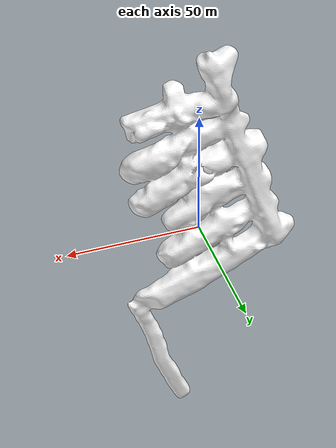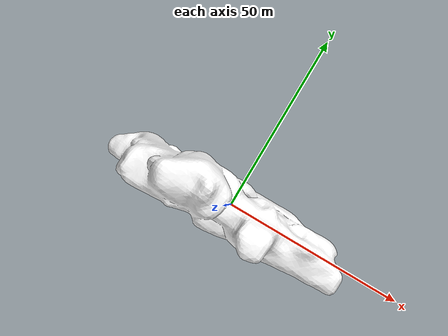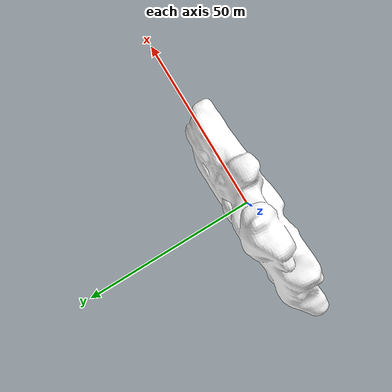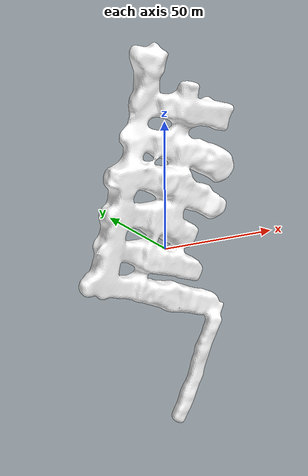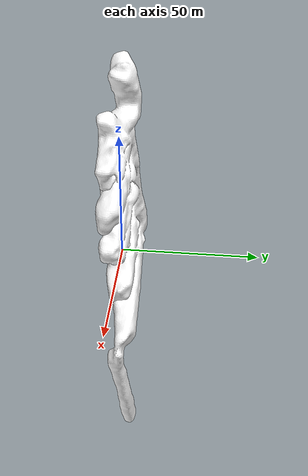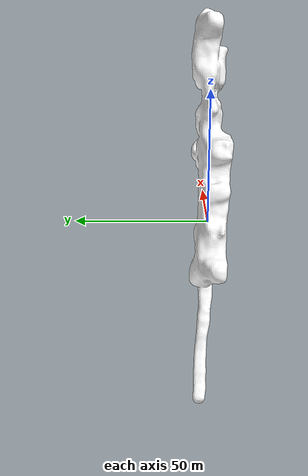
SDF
<?xml version="1.0" ?>
<sdf version="1.6">
  <world name="default">
    <scene>
      <ambient>0.25 0.25 0.25 1</ambient>
      <background>171 205 239 1</background>
      <shadows>false</shadows>
    </scene>
    <gravity>0 0 -9.81</gravity>

        <include>
            <uri>model://sun</uri>
        </include>
        <include>
          <name>mine</name>
          <uri>model://mine_vertical</uri>
          <pose>0 0 0  1.58 0 0</pose>
        </include>

    </world>
</sdf>

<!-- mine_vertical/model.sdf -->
<sdf version="1.6">
    <model name="mine_vertical">
      <pose frame=''>0 0 0  0 0 0</pose>
      <static>true</static>
      <link name="body">
        <collision name="body_collision">
          <geometry>
            <mesh>
              <uri>model://mine_vertical/meshes/mine_vertical.dae</uri>
              <scale>1 1 1</scale>
            </mesh>
          </geometry>
        </collision>
        <visual name="body_visual">
          <geometry>
            <mesh>
              <uri>model://mine_vertical/meshes/mine_vertical.dae</uri>
              <scale>1 1 1</scale>
            </mesh>
          </geometry>
          <material>
          <script>
            <uri>file://media/materials/scripts/gazebo.material</uri>
            <name>Gazebo/Motorway</name>
          </script>
          <ambient>1 1 1 1</ambient>
        </material>
        </visual>
      </link>
      <static>1</static>
    </model>
</sdf>
